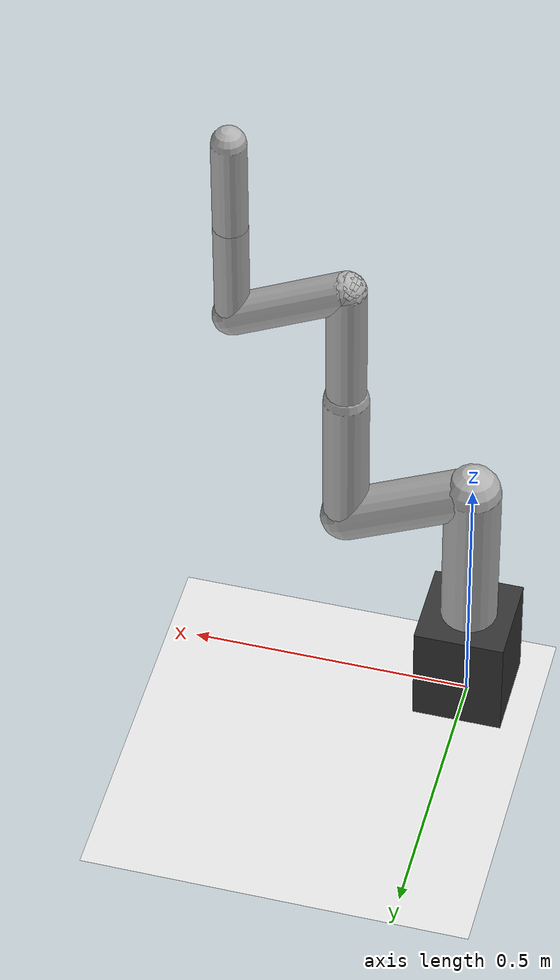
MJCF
<mujoco model="panda_simple">
  <compiler angle="radian" coordinate="local" inertiafromgeom="true"/>
  <option gravity="0 0 -9.81" timestep="0.002" integrator="RK4"/>

  <default>
    <joint limited="true" damping="2" armature="0.01" stiffness="5"/>
    <geom type="capsule" size="0.04 0.15" rgba="0.7 0.7 0.7 1" material="arm"/>
  </default>

  <asset>
    <texture name="sky" type="skybox" builtin="gradient" width="512" height="512" rgb1="0.65 0.75 0.9" rgb2="0.2 0.25 0.35"/>
    <material name="arm" texture="sky" texrepeat="1 1" reflectance="0.08" specular="0.35" shininess="0.6"/>
  </asset>

  <worldbody>
    <light name="top" pos="0 0 2.5" dir="0 0 -1" diffuse="1.1 1.1 1.1" specular="0.35 0.35 0.35" ambient="0.25 0.25 0.25"/>
    <light name="fill" pos="-1.5 -1.5 1.5" dir="0.6 0.6 -0.5" diffuse="0.6 0.6 0.6" specular="0.2 0.2 0.2" ambient="0.15 0.15 0.15"/>
    <geom name="floor" type="plane" size="3 3 0.1" rgba="0.9 0.9 0.9 1"/>

    <body name="base" pos="0 0 0.1">
      <geom type="box" size="0.08 0.08 0.1" rgba="0.2 0.2 0.2 1"/>
      <site name="base_site" pos="0 0 0" size="0.01" rgba="1 0 0 0"/>

      <body name="link1" pos="0 0 0.1">
        <joint name="panda_joint1" type="hinge" axis="0 0 1" range="-2.8973 2.8973"/>
        <geom fromto="0 0 0 0 0 0.3" size="0.05"/>

        <body name="link2" pos="0 0 0.3" euler="0 90 0">
          <joint name="panda_joint2" type="hinge" axis="0 0 1" range="-1.7628 1.7628"/>
          <geom fromto="0 0 0 0 0 0.25" size="0.045"/>

          <body name="link3" pos="0 0 0.25" euler="0 -90 0">
            <joint name="panda_joint3" type="hinge" axis="0 0 1" range="-2.8973 2.8973"/>
            <geom fromto="0 0 0 0 0 0.28" size="0.04"/>

            <body name="link4" pos="0 0 0.28">
              <joint name="panda_joint4" type="hinge" axis="0 1 0" range="-3.0718 -0.0698"/>
              <geom fromto="0 0 0 0 0 0.25" size="0.035"/>

              <body name="link5" pos="0 0 0.25" euler="0 90 0">
                <joint name="panda_joint5" type="hinge" axis="0 0 1" range="-2.8973 2.8973"/>
                <geom fromto="0 0 0 0 0 0.22" size="0.035"/>

                <body name="link6" pos="0 0 0.22" euler="0 -90 0">
                  <joint name="panda_joint6" type="hinge" axis="0 0 1" range="-0.0175 3.7525"/>
                  <geom fromto="0 0 0 0 0 0.2" size="0.03"/>

                  <body name="link7" pos="0 0 0.2">
                    <joint name="panda_joint7" type="hinge" axis="0 1 0" range="-2.8973 2.8973"/>
                    <geom fromto="0 0 0 0 0 0.18" size="0.03"/>
                    <site name="ee_site" pos="0 0 0.18" size="0.015" rgba="0 0.5 1 0"/>
                  </body>
                </body>
              </body>
            </body>
          </body>
        </body>
      </body>
    </body>
  </worldbody>
</mujoco>
